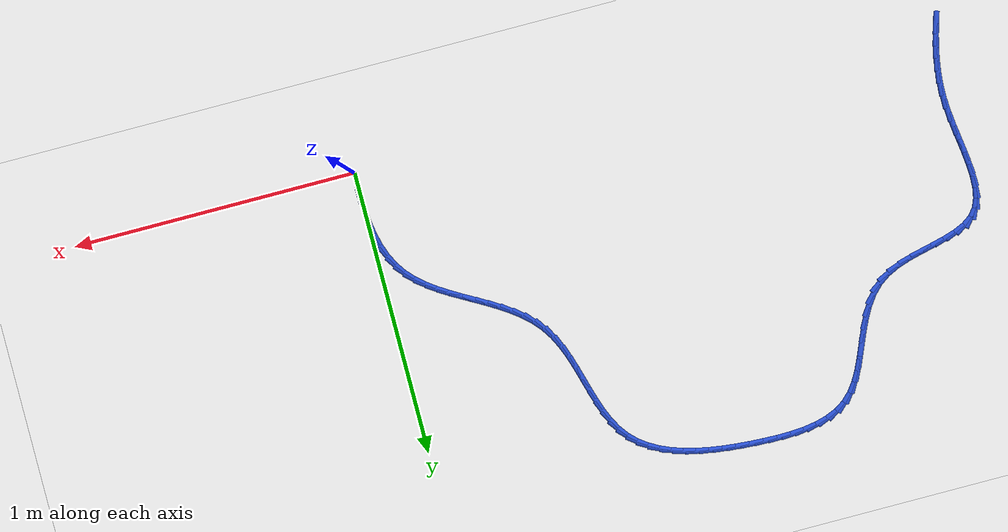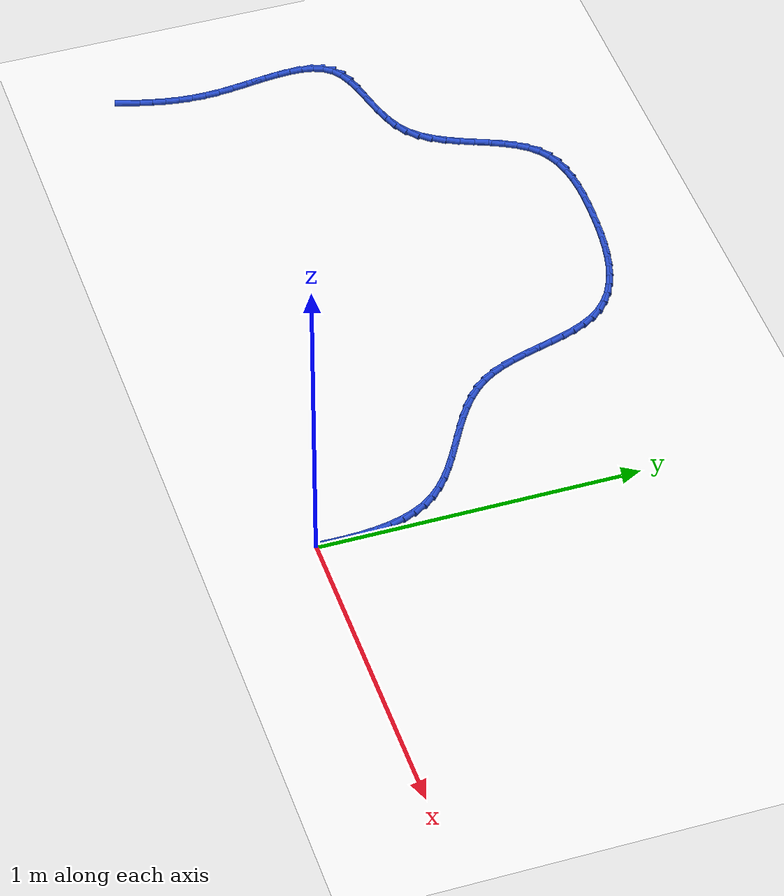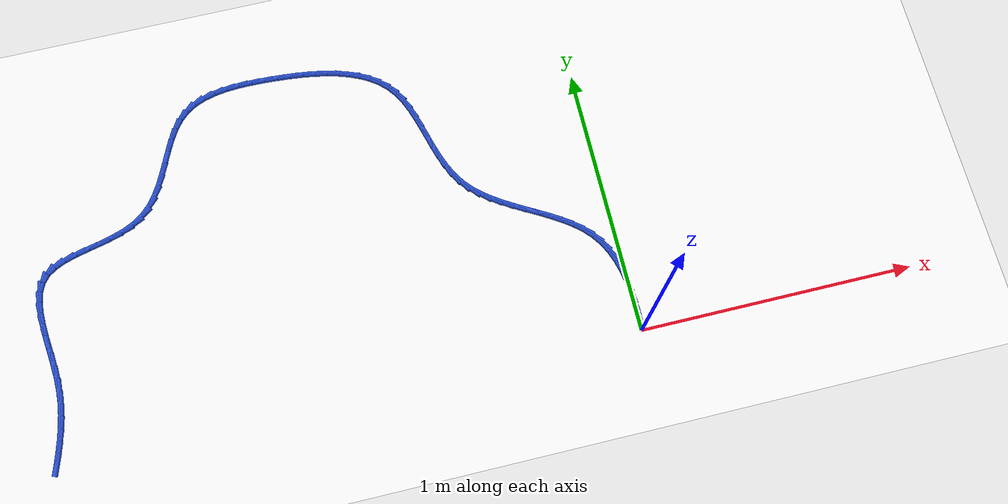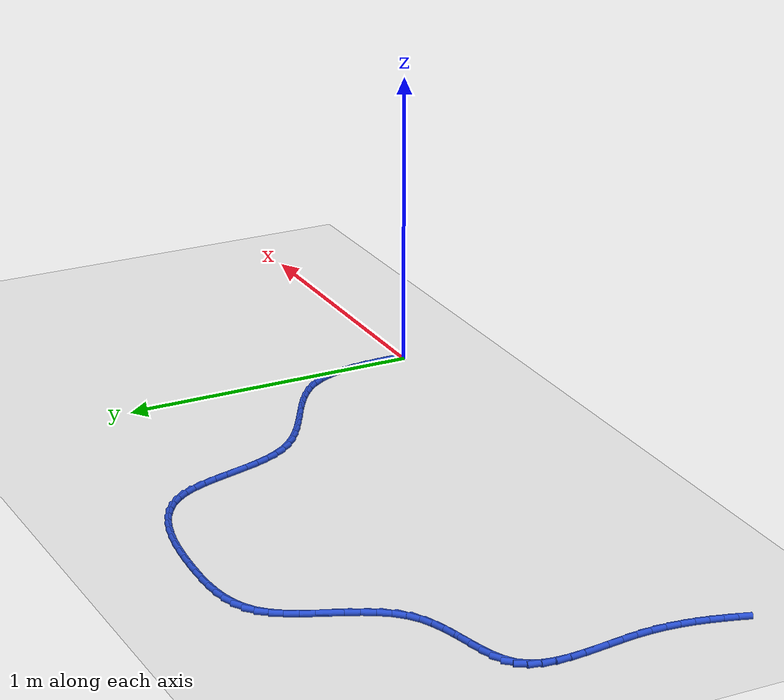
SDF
<sdf version="1.6">
 <world name="default">
  <model name="ground_plane">
   <static>1</static>
   <link name="link">
    <collision name="collision">
     <geometry><plane><normal>0 0 1</normal><size>100 100</size></plane></geometry>
     <surface><friction><ode><mu>100</mu><mu2>50</mu2></ode></friction></surface>
    </collision>
    <visual name="visual">
     <cast_shadows>0</cast_shadows>
     <geometry><plane><normal>0 0 1</normal><size>100 100</size></plane></geometry>
     <material>
      <script><uri>file://media/materials/scripts/gazebo.material</uri><name>Gazebo/WhiteGlow</name></script>
     </material>
    </visual>
   </link>
  </model>
  <model name="line">
   <link name="link_1">
    <pose>0.0013845153484845739 0.04559655424830299 0.01 0 1.57 -1.569472624652564</pose>
    <collision name="collision">
     <geometry><cylinder><radius>0.01</radius><length>0.08</length></cylinder></geometry>
    </collision>
    <visual name="visual">
     <material>
      <script><name>Gazebo/Blue</name><uri>file://media/materials/scripts/gazebo.material</uri></script>
     </material>
     <geometry><cylinder><radius>0.01</radius><length>0.08</length></cylinder></geometry>
    </visual>
   </link>
   <link name="link_2">
    <pose>0.0013239313605063591 0.09136512306441143 0.01 0 1.57 -1.527564902046161</pose>
    <collision name="collision">
     <geometry><cylinder><radius>0.01</radius><length>0.08</length></cylinder></geometry>
    </collision>
    <visual name="visual">
     <material>
      <script><name>Gazebo/Blue</name><uri>file://media/materials/scripts/gazebo.material</uri></script>
     </material>
     <geometry><cylinder><radius>0.01</radius><length>0.08</length></cylinder></geometry>
    </visual>
   </link>
   <link name="link_3">
    <pose>-0.0006421725845916727 0.13681537019135273 0.01 0 1.57 -1.4740586697944864</pose>
    <collision name="collision">
     <geometry><cylinder><radius>0.01</radius><length>0.08</length></cylinder></geometry>
    </collision>
    <visual name="visual">
     <material>
      <script><name>Gazebo/Blue</name><uri>file://media/materials/scripts/gazebo.material</uri></script>
     </material>
     <geometry><cylinder><radius>0.01</radius><length>0.08</length></cylinder></geometry>
    </visual>
   </link>
   <link name="link_4">
    <pose>-0.004974217107466558 0.1814569593721543 0.01 0 1.57 -1.4071152386686927</pose>
    <collision name="collision">
     <geometry><cylinder><radius>0.01</radius><length>0.08</length></cylinder></geometry>
    </collision>
    <visual name="visual">
     <material>
      <script><name>Gazebo/Blue</name><uri>file://media/materials/scripts/gazebo.material</uri></script>
     </material>
     <geometry><cylinder><radius>0.01</radius><length>0.08</length></cylinder></geometry>
    </visual>
   </link>
   <link name="link_5">
    <pose>-0.012132622828775332 0.2247995543498436 0.01 0 1.57 -1.3245299484104283</pose>
    <collision name="collision">
     <geometry><cylinder><radius>0.01</radius><length>0.08</length></cylinder></geometry>
    </collision>
    <visual name="visual">
     <material>
      <script><name>Gazebo/Blue</name><uri>file://media/materials/scripts/gazebo.material</uri></script>
     </material>
     <geometry><cylinder><radius>0.01</radius><length>0.08</length></cylinder></geometry>
    </visual>
   </link>
   <link name="link_6">
    <pose>-0.02257781036917503 0.26635281886744805 0.01 0 1.57 -1.2240264317761655</pose>
    <collision name="collision">
     <geometry><cylinder><radius>0.01</radius><length>0.08</length></cylinder></geometry>
    </collision>
    <visual name="visual">
     <material>
      <script><name>Gazebo/Blue</name><uri>file://media/materials/scripts/gazebo.material</uri></script>
     </material>
     <geometry><cylinder><radius>0.01</radius><length>0.08</length></cylinder></geometry>
    </visual>
   </link>
   <link name="link_7">
    <pose>-0.03677020034932268 0.30562641666799495 0.01 0 1.57 -1.1039057543658062</pose>
    <collision name="collision">
     <geometry><cylinder><radius>0.01</radius><length>0.08</length></cylinder></geometry>
    </collision>
    <visual name="visual">
     <material>
      <script><name>Gazebo/Blue</name><uri>file://media/materials/scripts/gazebo.material</uri></script>
     </material>
     <geometry><cylinder><radius>0.01</radius><length>0.08</length></cylinder></geometry>
    </visual>
   </link>
   <link name="link_8">
    <pose>-0.055170213389875336 0.3421300114945119 0.01 0 1.57 -0.964722960650036</pose>
    <collision name="collision">
     <geometry><cylinder><radius>0.01</radius><length>0.08</length></cylinder></geometry>
    </collision>
    <visual name="visual">
     <material>
      <script><name>Gazebo/Blue</name><uri>file://media/materials/scripts/gazebo.material</uri></script>
     </material>
     <geometry><cylinder><radius>0.01</radius><length>0.08</length></cylinder></geometry>
    </visual>
   </link>
   <link name="link_9">
    <pose>-0.07822112282450329 0.3753881838397205 0.01 0 1.57 -0.8269981324964049</pose>
    <collision name="collision">
     <geometry><cylinder><radius>0.01</radius><length>0.08</length></cylinder></geometry>
    </collision>
    <visual name="visual">
     <material>
      <script><name>Gazebo/Blue</name><uri>file://media/materials/scripts/gazebo.material</uri></script>
     </material>
     <geometry><cylinder><radius>0.01</radius><length>0.08</length></cylinder></geometry>
    </visual>
   </link>
   <link name="link_10">
    <pose>-0.10582831341240703 0.40539343365409924 0.01 0 1.57 -0.7149939350651064</pose>
    <collision name="collision">
     <geometry><cylinder><radius>0.01</radius><length>0.08</length></cylinder></geometry>
    </collision>
    <visual name="visual">
     <material>
      <script><name>Gazebo/Blue</name><uri>file://media/materials/scripts/gazebo.material</uri></script>
     </material>
     <geometry><cylinder><radius>0.01</radius><length>0.08</length></cylinder></geometry>
    </visual>
   </link>
   <link name="link_11">
    <pose>-0.13726492756092257 0.43268826048376147 0.01 0 1.57 -0.6300325433599481</pose>
    <collision name="collision">
     <geometry><cylinder><radius>0.01</radius><length>0.08</length></cylinder></geometry>
    </collision>
    <visual name="visual">
     <material>
      <script><name>Gazebo/Blue</name><uri>file://media/materials/scripts/gazebo.material</uri></script>
     </material>
     <geometry><cylinder><radius>0.01</radius><length>0.08</length></cylinder></geometry>
    </visual>
   </link>
   <link name="link_12">
    <pose>-0.17176793497721776 0.45784663119175517 0.01 0 1.57 -0.5700800207753692</pose>
    <collision name="collision">
     <geometry><cylinder><radius>0.01</radius><length>0.08</length></cylinder></geometry>
    </collision>
    <visual name="visual">
     <material>
      <script><name>Gazebo/Blue</name><uri>file://media/materials/scripts/gazebo.material</uri></script>
     </material>
     <geometry><cylinder><radius>0.01</radius><length>0.08</length></cylinder></geometry>
    </visual>
   </link>
   <link name="link_13">
    <pose>-0.2085743053684603 0.4814425126411283 0.01 0 1.57 -0.5327014073835895</pose>
    <collision name="collision">
     <geometry><cylinder><radius>0.01</radius><length>0.08</length></cylinder></geometry>
    </collision>
    <visual name="visual">
     <material>
      <script><name>Gazebo/Blue</name><uri>file://media/materials/scripts/gazebo.material</uri></script>
     </material>
     <geometry><cylinder><radius>0.01</radius><length>0.08</length></cylinder></geometry>
    </visual>
   </link>
   <link name="link_14">
    <pose>-0.24692100844181802 0.5040498716949288 0.01 0 1.57 -0.5159848641186257</pose>
    <collision name="collision">
     <geometry><cylinder><radius>0.01</radius><length>0.08</length></cylinder></geometry>
    </collision>
    <visual name="visual">
     <material>
      <script><name>Gazebo/Blue</name><uri>file://media/materials/scripts/gazebo.material</uri></script>
     </material>
     <geometry><cylinder><radius>0.01</radius><length>0.08</length></cylinder></geometry>
    </visual>
   </link>
   <link name="link_15">
    <pose>-0.2860450139044586 0.5262426752162045 0.01 0 1.57 -0.5189050249102899</pose>
    <collision name="collision">
     <geometry><cylinder><radius>0.01</radius><length>0.08</length></cylinder></geometry>
    </collision>
    <visual name="visual">
     <material>
      <script><name>Gazebo/Blue</name><uri>file://media/materials/scripts/gazebo.material</uri></script>
     </material>
     <geometry><cylinder><radius>0.01</radius><length>0.08</length></cylinder></geometry>
    </visual>
   </link>
   <link name="link_16">
    <pose>-0.32518329146354996 0.5485948900680037 0.01 0 1.57 -0.5414126193655295</pose>
    <collision name="collision">
     <geometry><cylinder><radius>0.01</radius><length>0.08</length></cylinder></geometry>
    </collision>
    <visual name="visual">
     <material>
      <script><name>Gazebo/Blue</name><uri>file://media/materials/scripts/gazebo.material</uri></script>
     </material>
     <geometry><cylinder><radius>0.01</radius><length>0.08</length></cylinder></geometry>
    </visual>
   </link>
   <link name="link_17">
    <pose>-0.3635728108262599 0.571680483113374 0.01 0 1.57 -0.5843854394884281</pose>
    <collision name="collision">
     <geometry><cylinder><radius>0.01</radius><length>0.08</length></cylinder></geometry>
    </collision>
    <visual name="visual">
     <material>
      <script><name>Gazebo/Blue</name><uri>file://media/materials/scripts/gazebo.material</uri></script>
     </material>
     <geometry><cylinder><radius>0.01</radius><length>0.08</length></cylinder></geometry>
    </visual>
   </link>
   <link name="link_18">
    <pose>-0.40045054169975586 0.5960734212153636 0.01 0 1.57 -0.6494313331032872</pose>
    <collision name="collision">
     <geometry><cylinder><radius>0.01</radius><length>0.08</length></cylinder></geometry>
    </collision>
    <visual name="visual">
     <material>
      <script><name>Gazebo/Blue</name><uri>file://media/materials/scripts/gazebo.material</uri></script>
     </material>
     <geometry><cylinder><radius>0.01</radius><length>0.08</length></cylinder></geometry>
    </visual>
   </link>
   <link name="link_19">
    <pose>-0.435053453791206 0.6223476712370204 0.01 0 1.57 -0.7384047845697882</pose>
    <collision name="collision">
     <geometry><cylinder><radius>0.01</radius><length>0.08</length></cylinder></geometry>
    </collision>
    <visual name="visual">
     <material>
      <script><name>Gazebo/Blue</name><uri>file://media/materials/scripts/gazebo.material</uri></script>
     </material>
     <geometry><cylinder><radius>0.01</radius><length>0.08</length></cylinder></geometry>
    </visual>
   </link>
   <link name="link_20">
    <pose>-0.466618516807778 0.6510772000413922 0.01 0 1.57 -0.8524077708560719</pose>
    <collision name="collision">
     <geometry><cylinder><radius>0.01</radius><length>0.08</length></cylinder></geometry>
    </collision>
    <visual name="visual">
     <material>
      <script><name>Gazebo/Blue</name><uri>file://media/materials/scripts/gazebo.material</uri></script>
     </material>
     <geometry><cylinder><radius>0.01</radius><length>0.08</length></cylinder></geometry>
    </visual>
   </link>
   <link name="link_21">
    <pose>-0.4943827004566395 0.6828359744915273 0.01 0 1.57 -0.9862905099047623</pose>
    <collision name="collision">
     <geometry><cylinder><radius>0.01</radius><length>0.08</length></cylinder></geometry>
    </collision>
    <visual name="visual">
     <material>
      <script><name>Gazebo/Blue</name><uri>file://media/materials/scripts/gazebo.material</uri></script>
     </material>
     <geometry><cylinder><radius>0.01</radius><length>0.08</length></cylinder></geometry>
    </visual>
   </link>
   <link name="link_22">
    <pose>-0.5177106823630979 0.7180944585080532 0.01 0 1.57 -1.1051406171056437</pose>
    <collision name="collision">
     <geometry><cylinder><radius>0.01</radius><length>0.08</length></cylinder></geometry>
    </collision>
    <visual name="visual">
     <material>
      <script><name>Gazebo/Blue</name><uri>file://media/materials/scripts/gazebo.material</uri></script>
     </material>
     <geometry><cylinder><radius>0.01</radius><length>0.08</length></cylinder></geometry>
    </visual>
   </link>
   <link name="link_23">
    <pose>-0.5370020797606627 0.756484332510644 0.01 0 1.57 -1.1932959229504543</pose>
    <collision name="collision">
     <geometry><cylinder><radius>0.01</radius><length>0.08</length></cylinder></geometry>
    </collision>
    <visual name="visual">
     <material>
      <script><name>Gazebo/Blue</name><uri>file://media/materials/scripts/gazebo.material</uri></script>
     </material>
     <geometry><cylinder><radius>0.01</radius><length>0.08</length></cylinder></geometry>
    </visual>
   </link>
   <link name="link_24">
    <pose>-0.5531585836852521 0.7972303631064355 0.01 0 1.57 -1.2529096891502483</pose>
    <collision name="collision">
     <geometry><cylinder><radius>0.01</radius><length>0.08</length></cylinder></geometry>
    </collision>
    <visual name="visual">
     <material>
      <script><name>Gazebo/Blue</name><uri>file://media/materials/scripts/gazebo.material</uri></script>
     </material>
     <geometry><cylinder><radius>0.01</radius><length>0.08</length></cylinder></geometry>
    </visual>
   </link>
   <link name="link_25">
    <pose>-0.5670851978884233 0.8395546320587337 0.01 0 1.57 -1.2864953150644989</pose>
    <collision name="collision">
     <geometry><cylinder><radius>0.01</radius><length>0.08</length></cylinder></geometry>
    </collision>
    <visual name="visual">
     <material>
      <script><name>Gazebo/Blue</name><uri>file://media/materials/scripts/gazebo.material</uri></script>
     </material>
     <geometry><cylinder><radius>0.01</radius><length>0.08</length></cylinder></geometry>
    </visual>
   </link>
   <link name="link_26">
    <pose>-0.5796869261217332 0.8826792211308442 0.01 0 1.57 -1.2956249751863824</pose>
    <collision name="collision">
     <geometry><cylinder><radius>0.01</radius><length>0.08</length></cylinder></geometry>
    </collision>
    <visual name="visual">
     <material>
      <script><name>Gazebo/Blue</name><uri>file://media/materials/scripts/gazebo.material</uri></script>
     </material>
     <geometry><cylinder><radius>0.01</radius><length>0.08</length></cylinder></geometry>
    </visual>
   </link>
   <link name="link_27">
    <pose>-0.5918687721367395 0.9258262120860725 0.01 0 1.57 -1.2804322602272586</pose>
    <collision name="collision">
     <geometry><cylinder><radius>0.01</radius><length>0.08</length></cylinder></geometry>
    </collision>
    <visual name="visual">
     <material>
      <script><name>Gazebo/Blue</name><uri>file://media/materials/scripts/gazebo.material</uri></script>
     </material>
     <geometry><cylinder><radius>0.01</radius><length>0.08</length></cylinder></geometry>
    </visual>
   </link>
   <link name="link_28">
    <pose>-0.604535739684999 0.968217686687725 0.01 0 1.57 -1.2394345128430861</pose>
    <collision name="collision">
     <geometry><cylinder><radius>0.01</radius><length>0.08</length></cylinder></geometry>
    </collision>
    <visual name="visual">
     <material>
      <script><name>Gazebo/Blue</name><uri>file://media/materials/scripts/gazebo.material</uri></script>
     </material>
     <geometry><cylinder><radius>0.01</radius><length>0.08</length></cylinder></geometry>
    </visual>
   </link>
   <link name="link_29">
    <pose>-0.6185928325180692 1.009075726699107 0.01 0 1.57 -1.1695877139725752</pose>
    <collision name="collision">
     <geometry><cylinder><radius>0.01</radius><length>0.08</length></cylinder></geometry>
    </collision>
    <visual name="visual">
     <material>
      <script><name>Gazebo/Blue</name><uri>file://media/materials/scripts/gazebo.material</uri></script>
     </material>
     <geometry><cylinder><radius>0.01</radius><length>0.08</length></cylinder></geometry>
    </visual>
   </link>
   <link name="link_30">
    <pose>-0.6349450543875073 1.0476224138835246 0.01 0 1.57 -1.0668543398511647</pose>
    <collision name="collision">
     <geometry><cylinder><radius>0.01</radius><length>0.08</length></cylinder></geometry>
    </collision>
    <visual name="visual">
     <material>
      <script><name>Gazebo/Blue</name><uri>file://media/materials/scripts/gazebo.material</uri></script>
     </material>
     <geometry><cylinder><radius>0.01</radius><length>0.08</length></cylinder></geometry>
    </visual>
   </link>
   <link name="link_31">
    <pose>-0.65449740904487 1.0830798300042832 0.01 0 1.57 -0.9286748813449177</pose>
    <collision name="collision">
     <geometry><cylinder><radius>0.01</radius><length>0.08</length></cylinder></geometry>
    </collision>
    <visual name="visual">
     <material>
      <script><name>Gazebo/Blue</name><uri>file://media/materials/scripts/gazebo.material</uri></script>
     </material>
     <geometry><cylinder><radius>0.01</radius><length>0.08</length></cylinder></geometry>
    </visual>
   </link>
   <link name="link_32">
    <pose>-0.6781344609064812 1.1146866527510004 0.01 0 1.57 -0.7758209641705359</pose>
    <collision name="collision">
     <geometry><cylinder><radius>0.01</radius><length>0.08</length></cylinder></geometry>
    </collision>
    <visual name="visual">
     <material>
      <script><name>Gazebo/Blue</name><uri>file://media/materials/scripts/gazebo.material</uri></script>
     </material>
     <geometry><cylinder><radius>0.01</radius><length>0.08</length></cylinder></geometry>
    </visual>
   </link>
   <link name="link_33">
    <pose>-0.7061447571134276 1.1421655021072694 0.01 0 1.57 -0.6359548162598948</pose>
    <collision name="collision">
     <geometry><cylinder><radius>0.01</radius><length>0.08</length></cylinder></geometry>
    </collision>
    <visual name="visual">
     <material>
      <script><name>Gazebo/Blue</name><uri>file://media/materials/scripts/gazebo.material</uri></script>
     </material>
     <geometry><cylinder><radius>0.01</radius><length>0.08</length></cylinder></geometry>
    </visual>
   </link>
   <link name="link_34">
    <pose>-0.7381411464522578 1.165787638214132 0.01 0 1.57 -0.5137644723700223</pose>
    <collision name="collision">
     <geometry><cylinder><radius>0.01</radius><length>0.08</length></cylinder></geometry>
    </collision>
    <visual name="visual">
     <material>
      <script><name>Gazebo/Blue</name><uri>file://media/materials/scripts/gazebo.material</uri></script>
     </material>
     <geometry><cylinder><radius>0.01</radius><length>0.08</length></cylinder></geometry>
    </visual>
   </link>
   <link name="link_35">
    <pose>-0.7737000234628637 1.1858539206093035 0.01 0 1.57 -0.40982685411062253</pose>
    <collision name="collision">
     <geometry><cylinder><radius>0.01</radius><length>0.08</length></cylinder></geometry>
    </collision>
    <visual name="visual">
     <material>
      <script><name>Gazebo/Blue</name><uri>file://media/materials/scripts/gazebo.material</uri></script>
     </material>
     <geometry><cylinder><radius>0.01</radius><length>0.08</length></cylinder></geometry>
    </visual>
   </link>
   <link name="link_36">
    <pose>-0.8123977826851357 1.2026652088304997 0.01 0 1.57 -0.3228977593227513</pose>
    <collision name="collision">
     <geometry><cylinder><radius>0.01</radius><length>0.08</length></cylinder></geometry>
    </collision>
    <visual name="visual">
     <material>
      <script><name>Gazebo/Blue</name><uri>file://media/materials/scripts/gazebo.material</uri></script>
     </material>
     <geometry><cylinder><radius>0.01</radius><length>0.08</length></cylinder></geometry>
    </visual>
   </link>
   <link name="link_37">
    <pose>-0.8538108186589655 1.2165223624154353 0.01 0 1.57 -0.25094994207727717</pose>
    <collision name="collision">
     <geometry><cylinder><radius>0.01</radius><length>0.08</length></cylinder></geometry>
    </collision>
    <visual name="visual">
     <material>
      <script><name>Gazebo/Blue</name><uri>file://media/materials/scripts/gazebo.material</uri></script>
     </material>
     <geometry><cylinder><radius>0.01</radius><length>0.08</length></cylinder></geometry>
    </visual>
   </link>
   <link name="link_38">
    <pose>-0.8975155259242433 1.2277262409018248 0.01 0 1.57 -0.19183848445173293</pose>
    <collision name="collision">
     <geometry><cylinder><radius>0.01</radius><length>0.08</length></cylinder></geometry>
    </collision>
    <visual name="visual">
     <material>
      <script><name>Gazebo/Blue</name><uri>file://media/materials/scripts/gazebo.material</uri></script>
     </material>
     <geometry><cylinder><radius>0.01</radius><length>0.08</length></cylinder></geometry>
    </visual>
   </link>
   <link name="link_39">
    <pose>-0.9430882990208614 1.2365777038273842 0.01 0 1.57 -0.14362994734283263</pose>
    <collision name="collision">
     <geometry><cylinder><radius>0.01</radius><length>0.08</length></cylinder></geometry>
    </collision>
    <visual name="visual">
     <material>
      <script><name>Gazebo/Blue</name><uri>file://media/materials/scripts/gazebo.material</uri></script>
     </material>
     <geometry><cylinder><radius>0.01</radius><length>0.08</length></cylinder></geometry>
    </visual>
   </link>
   <link name="link_40">
    <pose>-0.9901055324887096 1.2433776107298278 0.01 0 1.57 -0.10472395276142259</pose>
    <collision name="collision">
     <geometry><cylinder><radius>0.01</radius><length>0.08</length></cylinder></geometry>
    </collision>
    <visual name="visual">
     <material>
      <script><name>Gazebo/Blue</name><uri>file://media/materials/scripts/gazebo.material</uri></script>
     </material>
     <geometry><cylinder><radius>0.01</radius><length>0.08</length></cylinder></geometry>
    </visual>
   </link>
   <link name="link_41">
    <pose>-1.03814362086768 1.2484268211468712 0.01 0 1.57 -0.07387269782615163</pose>
    <collision name="collision">
     <geometry><cylinder><radius>0.01</radius><length>0.08</length></cylinder></geometry>
    </collision>
    <visual name="visual">
     <material>
      <script><name>Gazebo/Blue</name><uri>file://media/materials/scripts/gazebo.material</uri></script>
     </material>
     <geometry><cylinder><radius>0.01</radius><length>0.08</length></cylinder></geometry>
    </visual>
   </link>
   <link name="link_42">
    <pose>-1.0867789586976624 1.2520261946162285 0.01 0 1.57 -0.04993034661588256</pose>
    <collision name="collision">
     <geometry><cylinder><radius>0.01</radius><length>0.08</length></cylinder></geometry>
    </collision>
    <visual name="visual">
     <material>
      <script><name>Gazebo/Blue</name><uri>file://media/materials/scripts/gazebo.material</uri></script>
     </material>
     <geometry><cylinder><radius>0.01</radius><length>0.08</length></cylinder></geometry>
    </visual>
   </link>
   <link name="link_43">
    <pose>-1.1355854543903534 1.254465147001767 0.01 0 1.57 -0.023673149301641903</pose>
    <collision name="collision">
     <geometry><cylinder><radius>0.01</radius><length>0.08</length></cylinder></geometry>
    </collision>
    <visual name="visual">
     <material>
      <script><name>Gazebo/Blue</name><uri>file://media/materials/scripts/gazebo.material</uri></script>
     </material>
     <geometry><cylinder><radius>0.01</radius><length>0.08</length></cylinder></geometry>
    </visual>
   </link>
   <link name="link_44">
    <pose>-1.1840456571895621 1.255612566970763 0.01 0 1.57 0.01701203568731349</pose>
    <collision name="collision">
     <geometry><cylinder><radius>0.01</radius><length>0.08</length></cylinder></geometry>
    </collision>
    <visual name="visual">
     <material>
      <script><name>Gazebo/Blue</name><uri>file://media/materials/scripts/gazebo.material</uri></script>
     </material>
     <geometry><cylinder><radius>0.01</radius><length>0.08</length></cylinder></geometry>
    </visual>
   </link>
   <link name="link_45">
    <pose>-1.2315264097976346 1.2548047447809965 0.01 0 1.57 0.07532541561170775</pose>
    <collision name="collision">
     <geometry><cylinder><radius>0.01</radius><length>0.08</length></cylinder></geometry>
    </collision>
    <visual name="visual">
     <material>
      <script><name>Gazebo/Blue</name><uri>file://media/materials/scripts/gazebo.material</uri></script>
     </material>
     <geometry><cylinder><radius>0.01</radius><length>0.08</length></cylinder></geometry>
    </visual>
   </link>
   <link name="link_46">
    <pose>-1.2773871139506765 1.2513437198455402 0.01 0 1.57 0.15498956158423655</pose>
    <collision name="collision">
     <geometry><cylinder><radius>0.01</radius><length>0.08</length></cylinder></geometry>
    </collision>
    <visual name="visual">
     <material>
      <script><name>Gazebo/Blue</name><uri>file://media/materials/scripts/gazebo.material</uri></script>
     </material>
     <geometry><cylinder><radius>0.01</radius><length>0.08</length></cylinder></geometry>
    </visual>
   </link>
   <link name="link_47">
    <pose>-1.320987171384797 1.2445315315774677 0.01 0 1.57 0.26079267739791234</pose>
    <collision name="collision">
     <geometry><cylinder><radius>0.01</radius><length>0.08</length></cylinder></geometry>
    </collision>
    <visual name="visual">
     <material>
      <script><name>Gazebo/Blue</name><uri>file://media/materials/scripts/gazebo.material</uri></script>
     </material>
     <geometry><cylinder><radius>0.01</radius><length>0.08</length></cylinder></geometry>
    </visual>
   </link>
   <link name="link_48">
    <pose>-1.3616859838361028 1.233670219389853 0.01 0 1.57 0.39768448859703687</pose>
    <collision name="collision">
     <geometry><cylinder><radius>0.01</radius><length>0.08</length></cylinder></geometry>
    </collision>
    <visual name="visual">
     <material>
      <script><name>Gazebo/Blue</name><uri>file://media/materials/scripts/gazebo.material</uri></script>
     </material>
     <geometry><cylinder><radius>0.01</radius><length>0.08</length></cylinder></geometry>
    </visual>
   </link>
   <link name="link_49">
    <pose>-1.3988429530407014 1.2180618226957685 0.01 0 1.57 0.568231225746723</pose>
    <collision name="collision">
     <geometry><cylinder><radius>0.01</radius><length>0.08</length></cylinder></geometry>
    </collision>
    <visual name="visual">
     <material>
      <script><name>Gazebo/Blue</name><uri>file://media/materials/scripts/gazebo.material</uri></script>
     </material>
     <geometry><cylinder><radius>0.01</radius><length>0.08</length></cylinder></geometry>
    </visual>
   </link>
   <link name="link_50">
    <pose>-1.4318174807347015 1.1970083809082874 0.01 0 1.57 0.7651334246916499</pose>
    <collision name="collision">
     <geometry><cylinder><radius>0.01</radius><length>0.08</length></cylinder></geometry>
    </collision>
    <visual name="visual">
     <material>
      <script><name>Gazebo/Blue</name><uri>file://media/materials/scripts/gazebo.material</uri></script>
     </material>
     <geometry><cylinder><radius>0.01</radius><length>0.08</length></cylinder></geometry>
    </visual>
   </link>
   <link name="link_51">
    <pose>-1.460047176693905 1.1699002451794949 0.01 0 1.57 0.9386870698864203</pose>
    <collision name="collision">
     <geometry><cylinder><radius>0.01</radius><length>0.08</length></cylinder></geometry>
    </collision>
    <visual name="visual">
     <material>
      <script><name>Gazebo/Blue</name><uri>file://media/materials/scripts/gazebo.material</uri></script>
     </material>
     <geometry><cylinder><radius>0.01</radius><length>0.08</length></cylinder></geometry>
    </visual>
   </link>
   <link name="link_52">
    <pose>-1.4839608092331609 1.1372469730059778 0.01 0 1.57 1.059655129121919</pose>
    <collision name="collision">
     <geometry><cylinder><radius>0.01</radius><length>0.08</length></cylinder></geometry>
    </collision>
    <visual name="visual">
     <material>
      <script><name>Gazebo/Blue</name><uri>file://media/materials/scripts/gazebo.material</uri></script>
     </material>
     <geometry><cylinder><radius>0.01</radius><length>0.08</length></cylinder></geometry>
    </visual>
   </link>
   <link name="link_53">
    <pose>-1.5046678197249408 1.1003267311174731 0.01 0 1.57 1.1340458390978203</pose>
    <collision name="collision">
     <geometry><cylinder><radius>0.01</radius><length>0.08</length></cylinder></geometry>
    </collision>
    <visual name="visual">
     <material>
      <script><name>Gazebo/Blue</name><uri>file://media/materials/scripts/gazebo.material</uri></script>
     </material>
     <geometry><cylinder><radius>0.01</radius><length>0.08</length></cylinder></geometry>
    </visual>
   </link>
   <link name="link_54">
    <pose>-1.5232909983167524 1.0604327595474556 0.01 0 1.57 1.169068488118103</pose>
    <collision name="collision">
     <geometry><cylinder><radius>0.01</radius><length>0.08</length></cylinder></geometry>
    </collision>
    <visual name="visual">
     <material>
      <script><name>Gazebo/Blue</name><uri>file://media/materials/scripts/gazebo.material</uri></script>
     </material>
     <geometry><cylinder><radius>0.01</radius><length>0.08</length></cylinder></geometry>
    </visual>
   </link>
   <link name="link_55">
    <pose>-1.540953135156104 1.0188582983293986 0.01 0 1.57 1.1691243570447343</pose>
    <collision name="collision">
     <geometry><cylinder><radius>0.01</radius><length>0.08</length></cylinder></geometry>
    </collision>
    <visual name="visual">
     <material>
      <script><name>Gazebo/Blue</name><uri>file://media/materials/scripts/gazebo.material</uri></script>
     </material>
     <geometry><cylinder><radius>0.01</radius><length>0.08</length></cylinder></geometry>
    </visual>
   </link>
   <link name="link_56">
    <pose>-1.5587770203905011 0.9768965874967762 0.01 0 1.57 1.1351879654113437</pose>
    <collision name="collision">
     <geometry><cylinder><radius>0.01</radius><length>0.08</length></cylinder></geometry>
    </collision>
    <visual name="visual">
     <material>
      <script><name>Gazebo/Blue</name><uri>file://media/materials/scripts/gazebo.material</uri></script>
     </material>
     <geometry><cylinder><radius>0.01</radius><length>0.08</length></cylinder></geometry>
    </visual>
   </link>
   <link name="link_57">
    <pose>-1.5778854441674524 0.9358408670830636 0.01 0 1.57 1.0650988614510735</pose>
    <collision name="collision">
     <geometry><cylinder><radius>0.01</radius><length>0.08</length></cylinder></geometry>
    </collision>
    <visual name="visual">
     <material>
      <script><name>Gazebo/Blue</name><uri>file://media/materials/scripts/gazebo.material</uri></script>
     </material>
     <geometry><cylinder><radius>0.01</radius><length>0.08</length></cylinder></geometry>
    </visual>
   </link>
   <link name="link_58">
    <pose>-1.599401196634465 0.8969843771217336 0.01 0 1.57 0.9545679799490933</pose>
    <collision name="collision">
     <geometry><cylinder><radius>0.01</radius><length>0.08</length></cylinder></geometry>
    </collision>
    <visual name="visual">
     <material>
      <script><name>Gazebo/Blue</name><uri>file://media/materials/scripts/gazebo.material</uri></script>
     </material>
     <geometry><cylinder><radius>0.01</radius><length>0.08</length></cylinder></geometry>
    </visual>
   </link>
   <link name="link_59">
    <pose>-1.624447067939046 0.8616203576462618 0.01 0 1.57 0.7999885536335777</pose>
    <collision name="collision">
     <geometry><cylinder><radius>0.01</radius><length>0.08</length></cylinder></geometry>
    </collision>
    <visual name="visual">
     <material>
      <script><name>Gazebo/Blue</name><uri>file://media/materials/scripts/gazebo.material</uri></script>
     </material>
     <geometry><cylinder><radius>0.01</radius><length>0.08</length></cylinder></geometry>
    </visual>
   </link>
   <link name="link_60">
    <pose>-1.6541458482287026 0.8310420486901213 0.01 0 1.57 0.607718900748891</pose>
    <collision name="collision">
     <geometry><cylinder><radius>0.01</radius><length>0.08</length></cylinder></geometry>
    </collision>
    <visual name="visual">
     <material>
      <script><name>Gazebo/Blue</name><uri>file://media/materials/scripts/gazebo.material</uri></script>
     </material>
     <geometry><cylinder><radius>0.01</radius><length>0.08</length></cylinder></geometry>
    </visual>
   </link>
   <link name="link_61">
    <pose>-1.6895166786201428 0.8064406148847577 0.01 0 1.57 0.4369143367108485</pose>
    <collision name="collision">
     <geometry><cylinder><radius>0.01</radius><length>0.08</length></cylinder></geometry>
    </collision>
    <visual name="visual">
     <material>
      <script><name>Gazebo/Blue</name><uri>file://media/materials/scripts/gazebo.material</uri></script>
     </material>
     <geometry><cylinder><radius>0.01</radius><length>0.08</length></cylinder></geometry>
    </visual>
   </link>
   <link name="link_62">
    <pose>-1.7300563078834523 0.7875079419042743 0.01 0 1.57 0.32235186396065074</pose>
    <collision name="collision">
     <geometry><cylinder><radius>0.01</radius><length>0.08</length></cylinder></geometry>
    </collision>
    <visual name="visual">
     <material>
      <script><name>Gazebo/Blue</name><uri>file://media/materials/scripts/gazebo.material</uri></script>
     </material>
     <geometry><cylinder><radius>0.01</radius><length>0.08</length></cylinder></geometry>
    </visual>
   </link>
   <link name="link_63">
    <pose>-1.7741039536307657 0.7727959582287991 0.01 0 1.57 0.25524072422625366</pose>
    <collision name="collision">
     <geometry><cylinder><radius>0.01</radius><length>0.08</length></cylinder></geometry>
    </collision>
    <visual name="visual">
     <material>
      <script><name>Gazebo/Blue</name><uri>file://media/materials/scripts/gazebo.material</uri></script>
     </material>
     <geometry><cylinder><radius>0.01</radius><length>0.08</length></cylinder></geometry>
    </visual>
   </link>
   <link name="link_64">
    <pose>-1.8199698782892837 0.7608280767592978 0.01 0 1.57 0.22857870780461786</pose>
    <collision name="collision">
     <geometry><cylinder><radius>0.01</radius><length>0.08</length></cylinder></geometry>
    </collision>
    <visual name="visual">
     <material>
      <script><name>Gazebo/Blue</name><uri>file://media/materials/scripts/gazebo.material</uri></script>
     </material>
     <geometry><cylinder><radius>0.01</radius><length>0.08</length></cylinder></geometry>
    </visual>
   </link>
   <link name="link_65">
    <pose>-1.8659643442862077 0.7501277103967352 0.01 0 1.57 0.2407616306191169</pose>
    <collision name="collision">
     <geometry><cylinder><radius>0.01</radius><length>0.08</length></cylinder></geometry>
    </collision>
    <visual name="visual">
     <material>
      <script><name>Gazebo/Blue</name><uri>file://media/materials/scripts/gazebo.material</uri></script>
     </material>
     <geometry><cylinder><radius>0.01</radius><length>0.08</length></cylinder></geometry>
    </visual>
   </link>
   <link name="link_66">
    <pose>-1.9103976140487386 0.7392182720420767 0.01 0 1.57 0.2968035414182749</pose>
    <collision name="collision">
     <geometry><cylinder><radius>0.01</radius><length>0.08</length></cylinder></geometry>
    </collision>
    <visual name="visual">
     <material>
      <script><name>Gazebo/Blue</name><uri>file://media/materials/scripts/gazebo.material</uri></script>
     </material>
     <geometry><cylinder><radius>0.01</radius><length>0.08</length></cylinder></geometry>
    </visual>
   </link>
   <link name="link_67">
    <pose>-1.9515799500040765 0.7266231745962871 0.01 0 1.57 0.4101296186176226</pose>
    <collision name="collision">
     <geometry><cylinder><radius>0.01</radius><length>0.08</length></cylinder></geometry>
    </collision>
    <visual name="visual">
     <material>
      <script><name>Gazebo/Blue</name><uri>file://media/materials/scripts/gazebo.material</uri></script>
     </material>
     <geometry><cylinder><radius>0.01</radius><length>0.08</length></cylinder></geometry>
    </visual>
   </link>
   <link name="link_68">
    <pose>-1.9878216145794225 0.7108658309603315 0.01 0 1.57 0.603168287672965</pose>
    <collision name="collision">
     <geometry><cylinder><radius>0.01</radius><length>0.08</length></cylinder></geometry>
    </collision>
    <visual name="visual">
     <material>
      <script><name>Gazebo/Blue</name><uri>file://media/materials/scripts/gazebo.material</uri></script>
     </material>
     <geometry><cylinder><radius>0.01</radius><length>0.08</length></cylinder></geometry>
    </visual>
   </link>
   <link name="link_69">
    <pose>-2.0174328702019775 0.6904696540351757 0.01 0 1.57 0.8889663896637061</pose>
    <collision name="collision">
     <geometry><cylinder><radius>0.01</radius><length>0.08</length></cylinder></geometry>
    </collision>
    <visual name="visual">
     <material>
      <script><name>Gazebo/Blue</name><uri>file://media/materials/scripts/gazebo.material</uri></script>
     </material>
     <geometry><cylinder><radius>0.01</radius><length>0.08</length></cylinder></geometry>
    </visual>
   </link>
   <link name="link_70">
    <pose>-2.0388628898275307 0.6640680047141443 0.01 0 1.57 1.1784163692076206</pose>
    <collision name="collision">
     <geometry><cylinder><radius>0.01</radius><length>0.08</length></cylinder></geometry>
    </collision>
    <visual name="visual">
     <material>
      <script><name>Gazebo/Blue</name><uri>file://media/materials/scripts/gazebo.material</uri></script>
     </material>
     <geometry><cylinder><radius>0.01</radius><length>0.08</length></cylinder></geometry>
    </visual>
   </link>
   <link name="link_71">
    <pose>-2.052277511643157 0.6316529882395371 0.01 0 1.57 1.3934941462807175</pose>
    <collision name="collision">
     <geometry><cylinder><radius>0.01</radius><length>0.08</length></cylinder></geometry>
    </collision>
    <visual name="visual">
     <material>
      <script><name>Gazebo/Blue</name><uri>file://media/materials/scripts/gazebo.material</uri></script>
     </material>
     <geometry><cylinder><radius>0.01</radius><length>0.08</length></cylinder></geometry>
    </visual>
   </link>
   <link name="link_72">
    <pose>-2.0590004523310976 0.5941331732580741 0.01 0 1.57 1.5377938032586311</pose>
    <collision name="collision">
     <geometry><cylinder><radius>0.01</radius><length>0.08</length></cylinder></geometry>
    </collision>
    <visual name="visual">
     <material>
      <script><name>Gazebo/Blue</name><uri>file://media/materials/scripts/gazebo.material</uri></script>
     </material>
     <geometry><cylinder><radius>0.01</radius><length>0.08</length></cylinder></geometry>
    </visual>
   </link>
   <link name="link_73">
    <pose>-2.0603771203039543 0.5524342974693044 0.01 0 1.57 -1.5124850217161692</pose>
    <collision name="collision">
     <geometry><cylinder><radius>0.01</radius><length>0.08</length></cylinder></geometry>
    </collision>
    <visual name="visual">
     <material>
      <script><name>Gazebo/Blue</name><uri>file://media/materials/scripts/gazebo.material</uri></script>
     </material>
     <geometry><cylinder><radius>0.01</radius><length>0.08</length></cylinder></geometry>
    </visual>
   </link>
   <link name="link_74">
    <pose>-2.057752923974331 0.507482098572777 0.01 0 1.57 -1.4595887646121977</pose>
    <collision name="collision">
     <geometry><cylinder><radius>0.01</radius><length>0.08</length></cylinder></geometry>
    </collision>
    <visual name="visual">
     <material>
      <script><name>Gazebo/Blue</name><uri>file://media/materials/scripts/gazebo.material</uri></script>
     </material>
     <geometry><cylinder><radius>0.01</radius><length>0.08</length></cylinder></geometry>
    </visual>
   </link>
   <link name="link_75">
    <pose>-2.0524732717548297 0.4602023142680419 0.01 0 1.57 -1.4362509530597052</pose>
    <collision name="collision">
     <geometry><cylinder><radius>0.01</radius><length>0.08</length></cylinder></geometry>
    </collision>
    <visual name="visual">
     <material>
      <script><name>Gazebo/Blue</name><uri>file://media/materials/scripts/gazebo.material</uri></script>
     </material>
     <geometry><cylinder><radius>0.01</radius><length>0.08</length></cylinder></geometry>
    </visual>
   </link>
   <link name="link_76">
    <pose>-2.045883572058054 0.41152068225464833 0.01 0 1.57 -1.438245330989654</pose>
    <collision name="collision">
     <geometry><cylinder><radius>0.01</radius><length>0.08</length></cylinder></geometry>
    </collision>
    <visual name="visual">
     <material>
      <script><name>Gazebo/Blue</name><uri>file://media/materials/scripts/gazebo.material</uri></script>
     </material>
     <geometry><cylinder><radius>0.01</radius><length>0.08</length></cylinder></geometry>
    </visual>
   </link>
   <link name="link_77">
    <pose>-2.0393292332966073 0.3623629402321451 0.01 0 1.57 -1.4649773185020307</pose>
    <collision name="collision">
     <geometry><cylinder><radius>0.01</radius><length>0.08</length></cylinder></geometry>
    </collision>
    <visual name="visual">
     <material>
      <script><name>Gazebo/Blue</name><uri>file://media/materials/scripts/gazebo.material</uri></script>
     </material>
     <geometry><cylinder><radius>0.01</radius><length>0.08</length></cylinder></geometry>
    </visual>
   </link>
   <link name="link_78">
    <pose>-2.0341556638830904 0.31365482590008226 0.01 0 1.57 -1.5187879900041479</pose>
    <collision name="collision">
     <geometry><cylinder><radius>0.01</radius><length>0.08</length></cylinder></geometry>
    </collision>
    <visual name="visual">
     <material>
      <script><name>Gazebo/Blue</name><uri>file://media/materials/scripts/gazebo.material</uri></script>
     </material>
     <geometry><cylinder><radius>0.01</radius><length>0.08</length></cylinder></geometry>
    </visual>
   </link>
   <link name="link_79">
    <pose>-2.0316911442934686 0.2663105485248813 0.01 0 1.57 1.552027496441594</pose>
    <collision name="collision">
     <geometry><cylinder><radius>0.01</radius><length>0.08</length></cylinder></geometry>
    </collision>
    <visual name="visual">
     <material>
      <script><name>Gazebo/Blue</name><uri>file://media/materials/scripts/gazebo.material</uri></script>
     </material>
     <geometry><cylinder><radius>0.01</radius><length>0.08</length></cylinder></geometry>
    </visual>
   </link>
   <link name="link_80">
    <pose>-2.032546153048206 0.22076118084474972 0.01 0 1.57 1.4841101026038674</pose>
    <collision name="collision">
     <geometry><cylinder><radius>0.01</radius><length>0.08</length></cylinder></geometry>
    </collision>
    <visual name="visual">
     <material>
      <script><name>Gazebo/Blue</name><uri>file://media/materials/scripts/gazebo.material</uri></script>
     </material>
     <geometry><cylinder><radius>0.01</radius><length>0.08</length></cylinder></geometry>
    </visual>
   </link>
   <link name="link_81">
    <pose>-2.036367497284289 0.17678916982725745 0.01 0 1.57 1.4226359083175852</pose>
    <collision name="collision">
     <geometry><cylinder><radius>0.01</radius><length>0.08</length></cylinder></geometry>
    </collision>
    <visual name="visual">
     <material>
      <script><name>Gazebo/Blue</name><uri>file://media/materials/scripts/gazebo.material</uri></script>
     </material>
     <geometry><cylinder><radius>0.01</radius><length>0.08</length></cylinder></geometry>
    </visual>
   </link>
   <link name="link_82">
    <pose>-2.0427343409721517 0.1341314333293382 0.01 0 1.57 1.3694705506533615</pose>
    <collision name="collision">
     <geometry><cylinder><radius>0.01</radius><length>0.08</length></cylinder></geometry>
    </collision>
    <visual name="visual">
     <material>
      <script><name>Gazebo/Blue</name><uri>file://media/materials/scripts/gazebo.material</uri></script>
     </material>
     <geometry><cylinder><radius>0.01</radius><length>0.08</length></cylinder></geometry>
    </visual>
   </link>
   <link name="link_83">
    <pose>-2.0512258480822254 0.09252488920792717 0.01 0 1.57 1.3260315108773078</pose>
    <collision name="collision">
     <geometry><cylinder><radius>0.01</radius><length>0.08</length></cylinder></geometry>
    </collision>
    <visual name="visual">
     <material>
      <script><name>Gazebo/Blue</name><uri>file://media/materials/scripts/gazebo.material</uri></script>
     </material>
     <geometry><cylinder><radius>0.01</radius><length>0.08</length></cylinder></geometry>
    </visual>
   </link>
   <link name="link_84">
    <pose>-2.0614211825849447 0.05170645531995793 0.01 0 1.57 1.2932787080539383</pose>
    <collision name="collision">
     <geometry><cylinder><radius>0.01</radius><length>0.08</length></cylinder></geometry>
    </collision>
    <visual name="visual">
     <material>
      <script><name>Gazebo/Blue</name><uri>file://media/materials/scripts/gazebo.material</uri></script>
     </material>
     <geometry><cylinder><radius>0.01</radius><length>0.08</length></cylinder></geometry>
    </visual>
   </link>
   <link name="link_85">
    <pose>-2.0728995084507416 0.011413049522365496 0.01 0 1.57 1.2717701373923898</pose>
    <collision name="collision">
     <geometry><cylinder><radius>0.01</radius><length>0.08</length></cylinder></geometry>
    </collision>
    <visual name="visual">
     <material>
      <script><name>Gazebo/Blue</name><uri>file://media/materials/scripts/gazebo.material</uri></script>
     </material>
     <geometry><cylinder><radius>0.01</radius><length>0.08</length></cylinder></geometry>
    </visual>
   </link>
   <link name="link_171">
    <pose>0.0014846891816660502 0.04567391463263455 0.01 0 1.57 1.538301486174095</pose>
    <collision name="collision">
     <geometry><cylinder><radius>0.01</radius><length>0.08</length></cylinder></geometry>
    </collision>
    <visual name="visual">
     <material>
      <script><name>Gazebo/Blue</name><uri>file://media/materials/scripts/gazebo.material</uri></script>
     </material>
     <geometry><cylinder><radius>0.01</radius><length>0.08</length></cylinder></geometry>
    </visual>
   </link>
  </model>
 </world>
</sdf>
